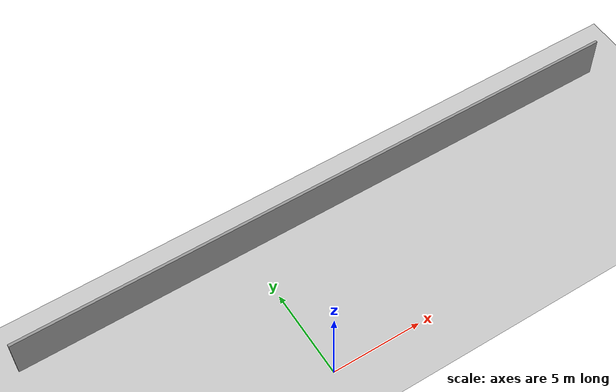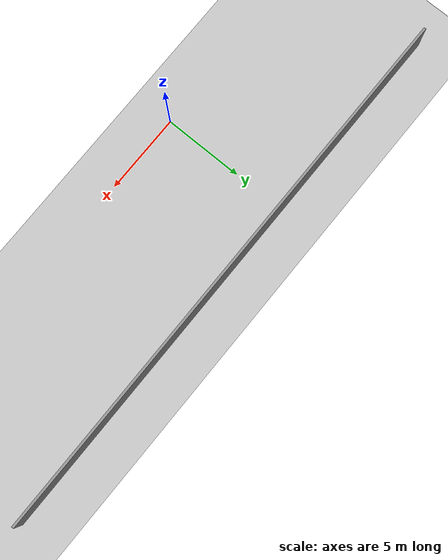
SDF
<sdf version="1.6">
 <world name="default">
  <model name="ground_plane">
   <static>1</static>
   <link name="link">
    <collision name="collision">
     <geometry><plane><normal>0 0 1</normal><size>100 100</size></plane></geometry>
     <surface><friction><ode><mu>100</mu><mu2>50</mu2></ode></friction></surface>
    </collision>
    <visual name="visual">
     <cast_shadows>0</cast_shadows>
     <geometry><plane><normal>0 0 1</normal><size>100 100</size></plane></geometry>
     <material>
      <script><uri>file://media/materials/scripts/gazebo.material</uri><name>Gazebo/Grey</name></script>
     </material>
    </visual>
   </link>
  </model>
  <model name="rbcp_final4">
   <link name="Wall_46">
    <pose>-0.05 11.925 2.5 0 -0 0</pose>
    <visual name="Wall_46_Visual">
     <pose>0 0 1.25 0 -0 0</pose>
     <geometry><box><size>35.25 0.15 2.5</size></box></geometry>
     <material>
      <script><uri>file://media/materials/scripts/gazebo.material</uri><name>Gazebo/Grey</name></script>
      <ambient>1 1 1 1</ambient>
      <diffuse>0.7 0.7 0.7 1</diffuse>
      <specular>0.01 0.01 0.01 1</specular>
      <emissive>0 0 0 1</emissive>
     </material>
    </visual>
    <collision name="Wall_46_Collision">
     <pose>0 0 1.25 0 -0 0</pose>
     <geometry><box><size>35.25 0.15 2.5</size></box></geometry>
     <surface>
      <friction>
       <ode><mu>1</mu><mu2>1</mu2><fdir1>0 0 0</fdir1><slip1>0</slip1><slip2>0</slip2></ode>
       <torsional>
        <coefficient>1</coefficient>
        <patch_radius>0</patch_radius>
        <surface_radius>0</surface_radius>
        <use_patch_radius>1</use_patch_radius>
        <ode><slip>0</slip></ode>
       </torsional>
      </friction>
      <bounce><restitution_coefficient>0</restitution_coefficient><threshold>1e+06</threshold></bounce>
      <contact>
       <collide_without_contact>0</collide_without_contact>
       <collide_without_contact_bitmask>1</collide_without_contact_bitmask>
       <collide_bitmask>1</collide_bitmask>
       <ode>
        <soft_cfm>0</soft_cfm>
        <soft_erp>0.2</soft_erp>
        <kp>1e+13</kp>
        <kd>1</kd>
        <max_vel>0.01</max_vel>
        <min_depth>0</min_depth>
       </ode>
       <bullet>
        <split_impulse>1</split_impulse>
        <split_impulse_penetration_threshold>-0.01</split_impulse_penetration_threshold>
        <soft_cfm>0</soft_cfm>
        <soft_erp>0.2</soft_erp>
        <kp>1e+13</kp>
        <kd>1</kd>
       </bullet>
      </contact>
     </surface>
    </collision>
   </link>
   <static>1</static>
   <pose>4.93057 -3.68418 -2.5 0 -0 0</pose>
  </model>
 </world>
</sdf>
